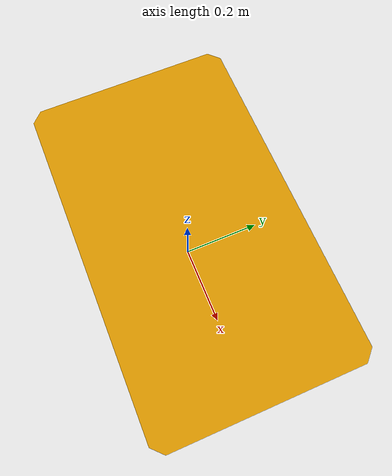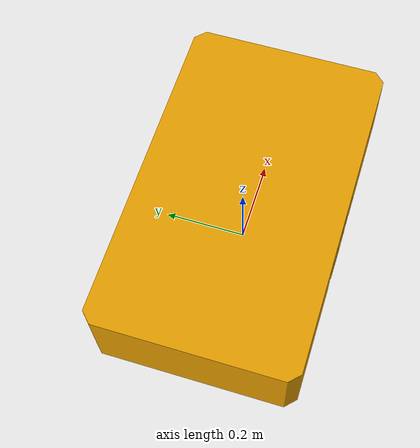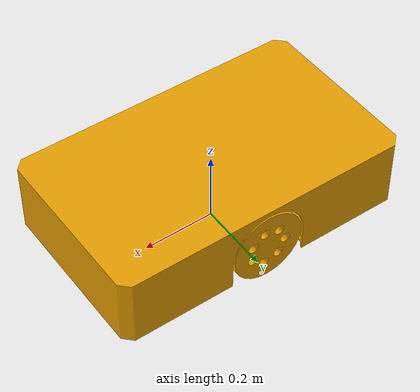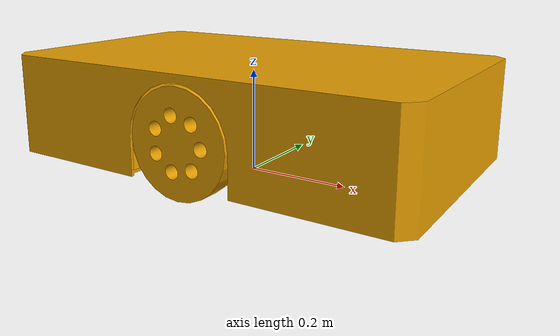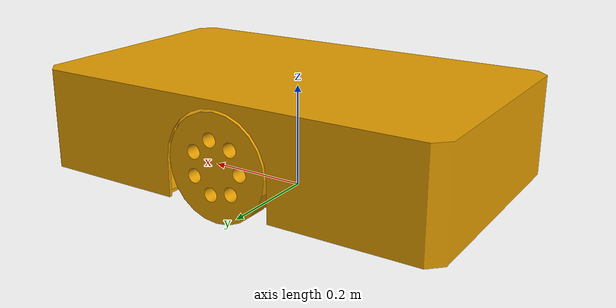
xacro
<?xml version="1.0"?>

<robot xmlns:xacro="http://wiki.ros.org/xacro"
  name="ITU_AGV">
<joint name="AGV_1/base_joint" type="fixed">
    <parent link="AGV_1/base_footprint"/>
    <child link="AGV_1/base_link"/>
    <origin xyz="0   0   0.12" rpy="0 0 0"/>
    <axis xyz="0 0 0"/>
    <limit lower="0" upper="0" effort="0" velocity="0"/>
  </joint>
  <joint name="AGV_1/base_to_wheel_left" type="fixed">
    <parent link="AGV_1/base_link"/>
    <child link="AGV_1/wheel_left"/>
    <origin xyz="0    0.22 -0.02" rpy="1.571 0    0"/>
    <axis xyz="0.e+00 -2.e-04 -1.e+00"/>
    <limit lower="0" upper="0" effort="0" velocity="0"/>
  </joint>
  <joint name="AGV_1/base_to_wheel_right" type="fixed">
    <parent link="AGV_1/base_link"/>
    <child link="AGV_1/wheel_right"/>
    <origin xyz="0   -0.22 -0.02" rpy="1.571 0    0"/>
    <axis xyz="0.e+00 -2.e-04 -1.e+00"/>
    <limit lower="0" upper="0" effort="0" velocity="0"/>
  </joint>
  <link name="AGV_1/base_link">
    <inertial>
      <mass value="5.67"/>
      <origin xyz="0 0 0" rpy="0 0 0"/>
      <inertia ixx="0.07" ixy="0" ixz="0" iyy="0.08" iyz="0" izz="0.10"/>
    </inertial>
    <collision name="AGV_1/collision">
      <origin xyz="0    0   -0.11" rpy="0     0    -1.571"/>
      <geometry>
        <mesh filename="package://itu_agv_description/meshes/agv.stl" scale="1.0 1.0 1.0"/>
      </geometry>
    </collision>
    <collision name="AGV_1/front_caster_collision">
      <origin xyz="0.25  0   -0.07" rpy="0 0 0"/>
      <geometry>
        <sphere radius=".05"/>
      </geometry>
    </collision>
    <collision name="AGV_1/back_caster_collision">
      <origin xyz="-0.25  0   -0.07" rpy="0 0 0"/>
      <geometry>
        <sphere radius=".05"/>
      </geometry>
    </collision>
    <visual name="AGV_1/visual">
      <origin xyz="0    0   -0.11" rpy="0     0    -1.571"/>
      <geometry>
        <mesh filename="package://itu_agv_description/meshes/agv.stl" scale="1.0 1.0 1.0"/>
      </geometry>
    </visual>
    <visual name="AGV_1/front_caster_visual">
      <origin xyz="0.25  0   -0.07" rpy="0 0 0"/>
      <geometry>
        <sphere radius=".05"/>
      </geometry>
    </visual>
    <visual name="AGV_1/back_caster_visual">
      <origin xyz="-0.25  0   -0.07" rpy="0 0 0"/>
      <geometry>
        <sphere radius=".05"/>
      </geometry>
    </visual>
  </link>
  <link name="AGV_1/base_footprint">
    <inertial>
      <mass value="0"/>
      <origin xyz="0 0 0" rpy="0 0 0"/>
      <inertia ixx="0" ixy="0" ixz="0" iyy="0" iyz="0" izz="0"/>
    </inertial>
  </link>
  <link name="AGV_1/wheel_left">
    <inertial>
      <mass value="0"/>
      <origin xyz="0 0 0" rpy="0 0 0"/>
      <inertia ixx="0" ixy="0" ixz="0" iyy="0" iyz="0" izz="0"/>
    </inertial>
    <collision name="AGV_1/collision">
      <origin xyz="0 0 0" rpy="0 0 0"/>
      <geometry>
        <cylinder radius=".1" length=".05"/>
      </geometry>
    </collision>
  </link>
  <link name="AGV_1/wheel_right">
    <inertial>
      <mass value="0"/>
      <origin xyz="0 0 0" rpy="0 0 0"/>
      <inertia ixx="0" ixy="0" ixz="0" iyy="0" iyz="0" izz="0"/>
    </inertial>
    <collision name="AGV_1/collision">
      <origin xyz="0 0 0" rpy="0 0 0"/>
      <geometry>
        <cylinder radius=".1" length=".05"/>
      </geometry>
    </collision>
  </link>

</robot>
